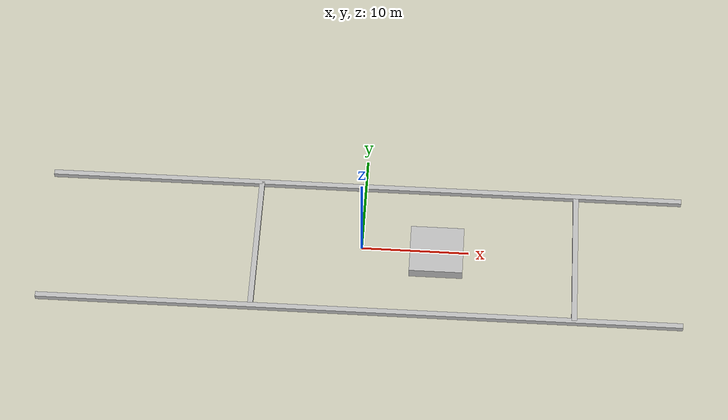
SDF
<?xml version="1.0" ?>
<sdf version="1.4">
  <world name="underwater">
    <include>
      <uri>model://sun</uri>
    </include>

    <wind>
      <linear_velocity>11 11 0</linear_velocity> <!-- Wind linear velocity -->
    </wind>
    <model name="model">
      <link name="link">
        <wind>true</wind>
      </link>
  </model>

    <model name='barco_obs'>
        <static>true</static>
        <link name='base_link'>
          <pose frame=''>7 0 0 0 0 0</pose>
          <inertial>
            <pose frame=''>0 0 0 0 0 0</pose>
            <mass>10</mass>
            <inertia>
              <ixx>3</ixx>
              <ixy>0</ixy>
              <ixz>0</ixz>
              <iyy>1</iyy>
              <iyz>0</iyz>
              <izz>3</izz>
            </inertia>
          </inertial>
          <collision name='base_link_collision'>
            <pose frame=''>0 0 0 1.5708 0 0</pose>
            <geometry>
              <box>
                <size>5 1 5</size>
              </box>
            </geometry>
          </collision>
          <visual name='base_link_visual'>
            <pose frame=''>0 0 0 1.5708 0 0</pose>
            <geometry>
              <box>
                <size>5 1 5</size>
              </box>
            </geometry>
          </visual>
        </link>
    </model>

    <model name='barco_obs1'>
        <static>true</static>
        <link name='base_link1'>
          <pose frame=''>0 -7 0 0 0 0</pose>
          <inertial>
            <pose frame=''>0 0 0 0 0 0</pose>
            <mass>10</mass>
            <inertia>
              <ixx>3</ixx>
              <ixy>0</ixy>
              <ixz>0</ixz>
              <iyy>1</iyy>
              <iyz>0</iyz>
              <izz>3</izz>
            </inertia>
          </inertial>
          <collision name='base_link_collision1'>
            <pose frame=''>0 0 0 1.5708 0 0</pose>
            <geometry>
              <box>
                <size>60 0.5 0.5</size>
              </box>
            </geometry>
          </collision>
          <visual name='base_link_visual1'>
            <pose frame=''>0 0 0 1.5708 0 0</pose>
            <geometry>
              <box>
                <size>60 0.5 0.5</size>
              </box>
            </geometry>
          </visual>
        </link>
    </model>

    <model name='barco_obs2'>
        <static>true</static>
        <link name='base_link2'>
          <pose frame=''>0 7 0 0 0 0</pose>
          <inertial>
            <pose frame=''>0 0 0 0 0 0</pose>
            <mass>10</mass>
            <inertia>
              <ixx>3</ixx>
              <ixy>0</ixy>
              <ixz>0</ixz>
              <iyy>1</iyy>
              <iyz>0</iyz>
              <izz>3</izz>
            </inertia>
          </inertial>
          <collision name='base_link_collision2'>
            <pose frame=''>0 0 0 1.5708 0 0</pose>
            <geometry>
              <box>
                <size>60 0.5 0.5</size>
              </box>
            </geometry>
          </collision>
          <visual name='base_link_visual2'>
            <pose frame=''>0 0 0 1.5708 0 0</pose>
            <geometry>
              <box>
                <size>60 0.5 0.5</size>
              </box>
            </geometry>
          </visual>
        </link>
    </model>

    <model name='barco_obs3'>
        <static>true</static>
        <link name='base_link3'>
          <pose frame=''>20 0 0 0 0 0</pose>
          <inertial>
            <pose frame=''>0 0 0 0 0 0</pose>
            <mass>10</mass>
            <inertia>
              <ixx>3</ixx>
              <ixy>0</ixy>
              <ixz>0</ixz>
              <iyy>1</iyy>
              <iyz>0</iyz>
              <izz>3</izz>
            </inertia>
          </inertial>
          <collision name='base_link_collision3'>
            <pose frame=''>0 0 0 1.5708 0 1.5708</pose>
            <geometry>
              <box>
                <size>14 0.5 0.5</size>
              </box>
            </geometry>
          </collision>
          <visual name='base_link_visual3'>
            <pose frame=''>0 0 0 1.5708 0 1.5708</pose>
            <geometry>
              <box>
                <size>14 0.5 0.5</size>
              </box>
            </geometry>
          </visual>
        </link>
    </model>

    <model name='barco_obs4'>
        <static>true</static>
        <link name='base_link4'>
          <pose frame=''>-10 0 0 0 0 0</pose>
          <inertial>
            <pose frame=''>0 0 0 0 0 0</pose>
            <mass>10</mass>
            <inertia>
              <ixx>3</ixx>
              <ixy>0</ixy>
              <ixz>0</ixz>
              <iyy>1</iyy>
              <iyz>0</iyz>
              <izz>3</izz>
            </inertia>
          </inertial>
          <collision name='base_link_collision4'>
            <pose frame=''>0 0 0 1.5708 0 1.5708</pose>
            <geometry>
              <box>
                <size>14 0.5 0.5</size>
              </box>
            </geometry>
          </collision>
          <visual name='base_link_visual4'>
            <pose frame=''>0 0 0 1.5708 0 1.5708</pose>
            <geometry>
              <box>
                <size>14 0.5 0.5</size>
              </box>
            </geometry>
          </visual>
        </link>
    </model>

    <!-- buoyancy plugin -->
    <plugin name="freefloating_gazebo_fluid" filename="libfreefloating_gazebo_fluid.so">
              <descriptionParam>robot_description</descriptionParam>
              <fluidTopic>current</fluidTopic>
              <alwaysOn>true</alwaysOn>
              <surface>0 0 0</surface>
              <updateRate>.001</updateRate>
          </plugin>
  </world>
</sdf>
